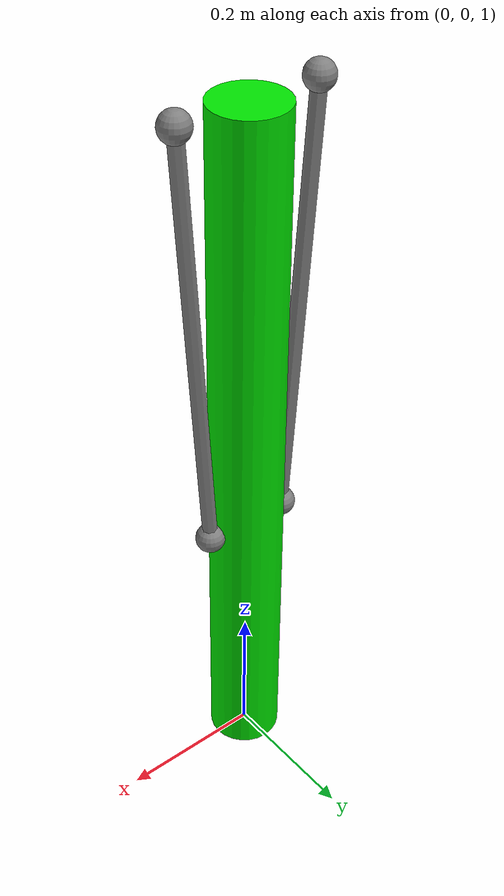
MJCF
<mujoco>
    <option timestep="0.005">
		<flag gravity="disable"/>
	</option>
    <size nuserdata="3"/>
   <worldbody>
      <light diffuse=".5 .5 .5" pos="0 0 3" dir="0 0 -1"/>
      <geom type="plane" size="1 1 0.1" rgba=".9 0 0 1"/>
      <site name="s0" pos="0.1 0 2" size="0.02"/>
      <site name="s2" pos="-0.1 0 2" size="0.02"/>
      <body pos="0 0 1" euler="0 0 0">
         <joint name="joint0" type="hinge" axis="0 -1 0" pos="0 0 1" damping="0.0" limited="true" range="-56 56"/>
         <geom name="pendulum" type="cylinder" pos="0 0 0.5" size="0.05 .5" rgba="0 .9 0 1" mass="1"/>
         <site name="s1" pos="0.06 0 0.4" size="0.02"/>
         <site name="s3" pos="-0.06 0 0.4" size="0.02"/>
      </body>
   </worldbody>
   <tendon>
       <spatial name="r-tendon" width="0.01">
            <site site="s0"/>
            <site site="s1"/>
       </spatial>
   </tendon>
   <tendon>
       <spatial name="l-tendon" width="0.01">
            <site site="s2"/>
            <site site="s3"/>
       </spatial>
   </tendon>
   <actuator>
        <muscle  name="r-muscle" tendon="r-tendon" range="0.75 1" scale="40"/>
        <muscle  name="l-muscle" tendon="l-tendon" range="0.75 1" scale="40"/>
   </actuator>
</mujoco>
